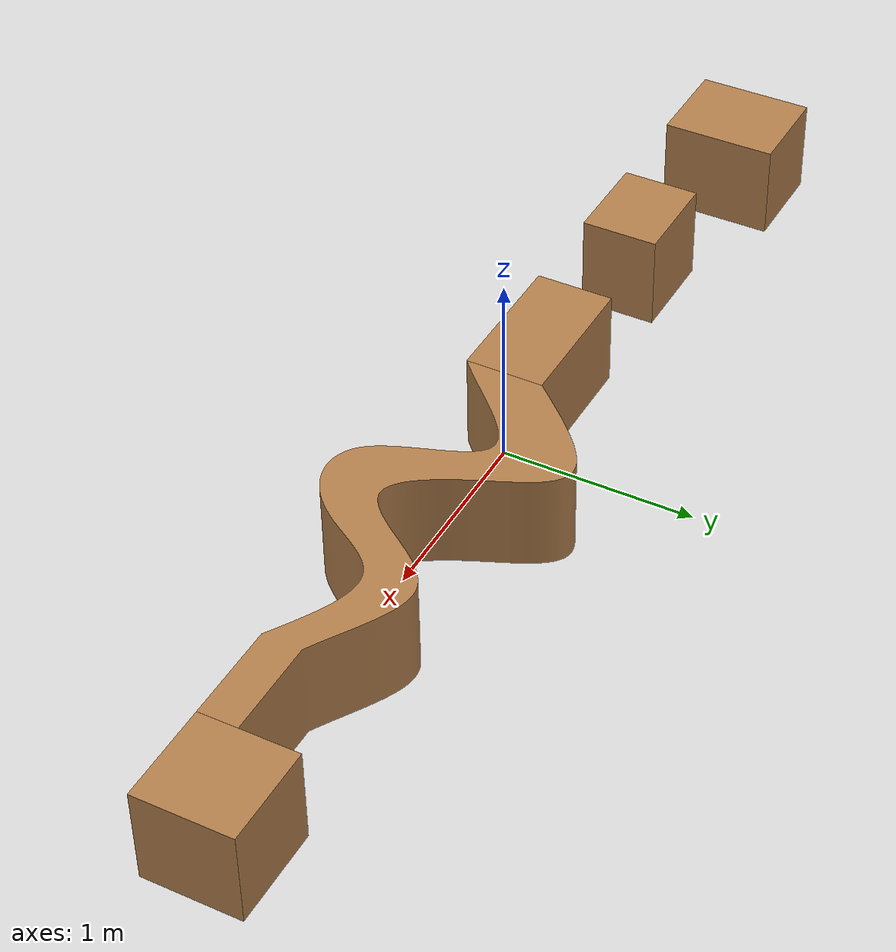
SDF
<sdf version='1.6'>
  <model name='turtlebot3_controlrace'>
    <static>1</static>
    <link name='first_box'>
      <collision name='collision'>
        <pose>-2.5 0.1 0.25 0 0 0</pose>
        <geometry>
          <box>
            <size>0.5 0.6 0.5</size>
          </box>
        </geometry>
        <max_contacts>10</max_contacts>
        <surface>
          <contact>
            <ode/>
          </contact>
          <bounce/>
          <friction>
            <torsional>
              <ode/>
            </torsional>
            <ode/>
          </friction>
        </surface>
      </collision>

      <visual name='visual'>
        <pose>-2.5 0.1 0.25 0 0 0</pose>
        <geometry>
          <box>
            <size>0.5 0.6 0.5</size>
          </box>
        </geometry>
        <material>
          <script>
            <uri>file://media/materials/scripts/gazebo.material</uri>
            <name>Gazebo/Wood</name>
          </script>
          <ambient>1 1 1 1</ambient>
        </material>
      </visual>
    </link>

    <link name='third_box'>
      <collision name='collision'>
        <pose>-1.5 0.0 0.25 0 0 0</pose>
        <geometry>
          <box>
            <size>0.5 0.4 0.5</size>
          </box>
        </geometry>
        <max_contacts>10</max_contacts>
        <surface>
          <contact>
            <ode/>
          </contact>
          <bounce/>
          <friction>
            <torsional>
              <ode/>
            </torsional>
            <ode/>
          </friction>
        </surface>
      </collision>

      <visual name='visual'>
        <pose>-1.5 0.0 0.25 0 0 0</pose>
        <geometry>
          <box>
            <size>0.5 0.4 0.5</size>
          </box>
        </geometry>
        <material>
          <script>
            <uri>file://media/materials/scripts/gazebo.material</uri>
            <name>Gazebo/Wood</name>
          </script>
          <ambient>1 1 1 1</ambient>
        </material>
      </visual>
    </link>

    <link name='fifth_box'>
      <collision name='collision'>
        <pose>-0.375 0.0 0.25 0 0 0</pose>
        <geometry>
          <box>
            <size>0.75 0.4 0.5</size>
          </box>
        </geometry>
        <max_contacts>10</max_contacts>
        <surface>
          <contact>
            <ode/>
          </contact>
          <bounce/>
          <friction>
            <torsional>
              <ode/>
            </torsional>
            <ode/>
          </friction>
        </surface>
      </collision>

      <visual name='visual'>
        <pose>-0.375 0.0 0.25 0 0 0</pose>
        <geometry>
          <box>
            <size>0.75 0.4 0.5</size>
          </box>
        </geometry>
        <material>
          <script>
            <uri>file://media/materials/scripts/gazebo.material</uri>
            <name>Gazebo/Wood</name>
          </script>
          <ambient>1 1 1 1</ambient>
        </material>
      </visual>
    </link>

    <link name='curves'>
      <collision name='collision'>
        <pose>0 0 0 0 0 0</pose>
        <geometry>
          <mesh>
            <uri>model://turtlebot3_controlrace/meshes/curves.dae</uri>
            <scale>1 1 1</scale>
          </mesh>
        </geometry>
        <max_contacts>10</max_contacts>
        <surface>
          <bounce/>
          <friction>
            <ode/>
          </friction>
          <contact>
            <ode/>
          </contact>
        </surface>
      </collision>

      <visual name='visual'>
        <pose>0 0 0 0 0 0</pose>
        <geometry>
          <mesh>
            <uri>model://turtlebot3_controlrace/meshes/curves.dae</uri>
            <scale>1 1 1</scale>
          </mesh>
        </geometry>
        <material>
          <script>
            <uri>file://media/materials/scripts/gazebo.material</uri>
            <name>Gazebo/Wood</name>
          </script>
          <ambient>1 1 1 1</ambient>
      <specular>1 1 1 0</specular>
      <direction>-1 -1 -1</direction>

        </material>
      </visual>
    </link>

    <link name='goal'>
      <collision name='collision'>
        <pose>2.75 0.15 0.25 0 0 0</pose>
        <geometry>
          <box>
            <size>0.5 0.5 0.5</size>
          </box>
        </geometry>
        <max_contacts>10</max_contacts>
        <surface>
          <contact>
            <ode/>
          </contact>
          <bounce/>
          <friction>
            <torsional>
              <ode/>
            </torsional>
            <ode/>
          </friction>
        </surface>
      </collision>

      <visual name='visual'>
        <pose>2.75 0.15 0.25 0 0 0</pose>
        <geometry>
          <box>
            <size>0.5 0.5 0.5</size>
          </box>
        </geometry>
        <material>
          <script>
            <uri>file://media/materials/scripts/gazebo.material</uri>
            <name>Gazebo/Wood</name>
          </script>
          <ambient>1 1 1 1</ambient>
        </material>
      </visual>
    </link>

    <allow_auto_disable>1</allow_auto_disable>
  </model>
</sdf>
